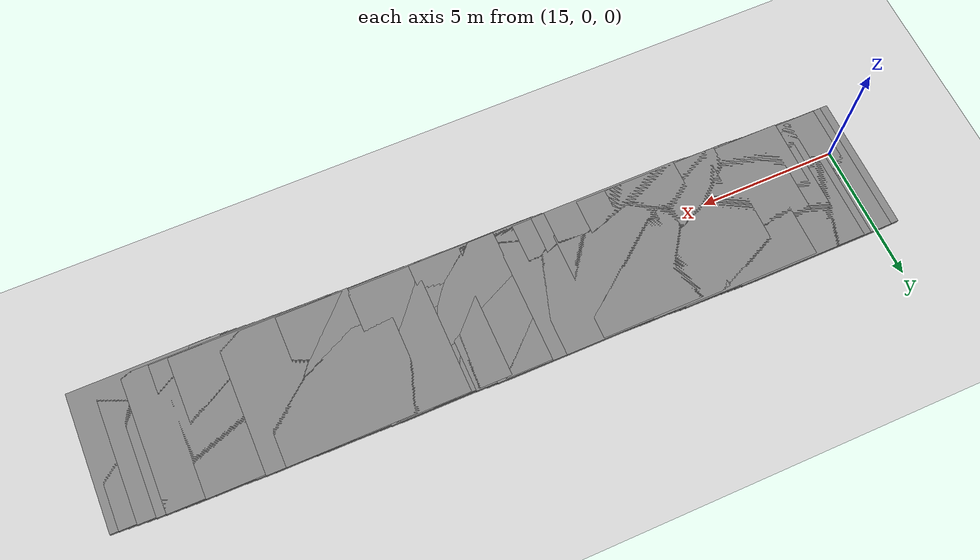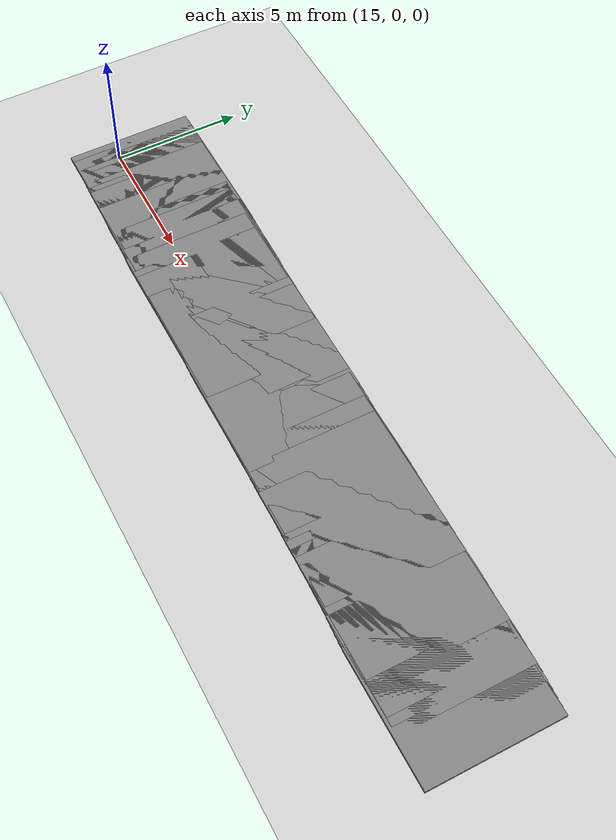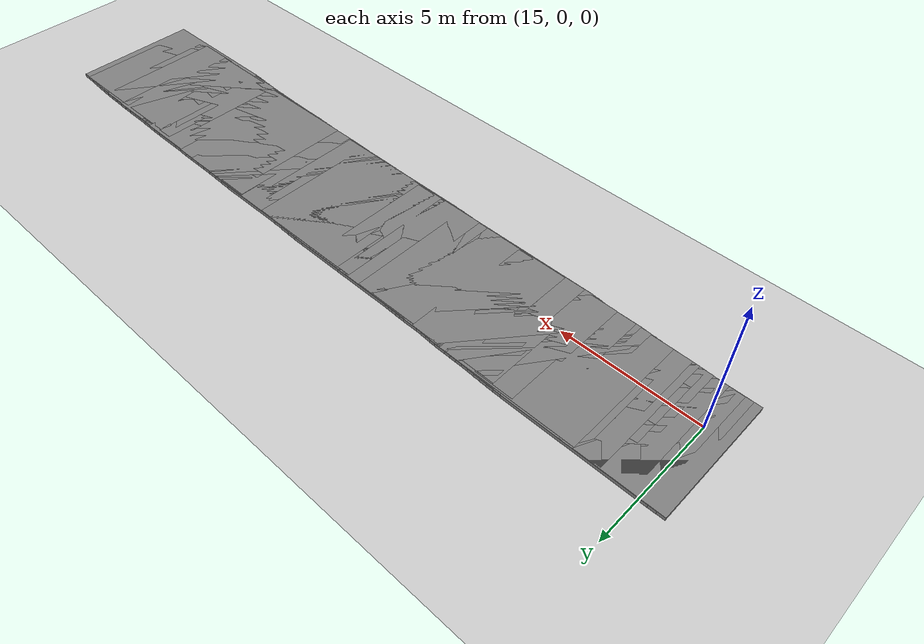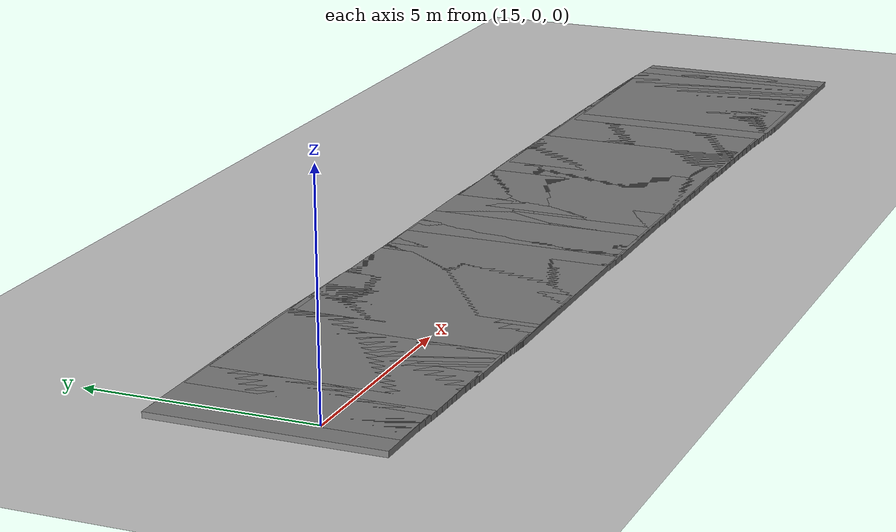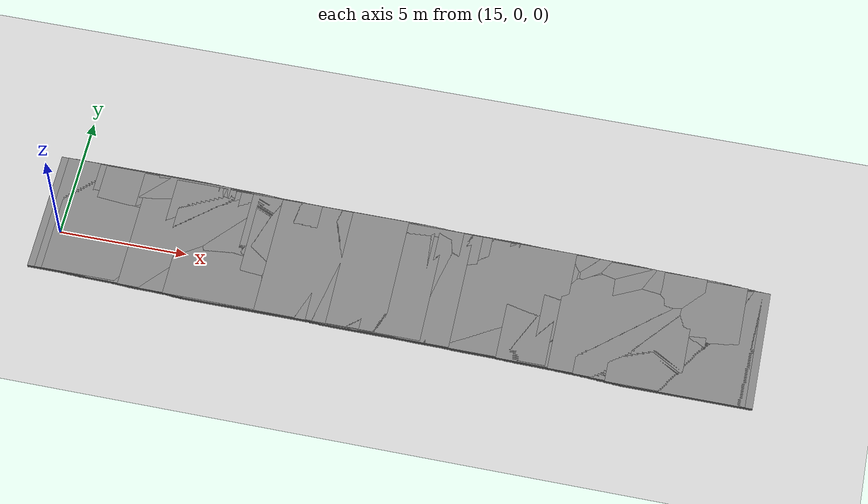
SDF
<sdf version="1.6">
 <world name="default">
  <include><uri>model://sun</uri></include>
  <include><uri>model://ground_plane</uri></include>
  <model name="road_segment_628">
   <static>true</static>
   <link name="link">
    <visual name="visual">
     <geometry><box><size>5.0 5.0 0.2</size></box></geometry>
     <material><ambient>0.5 0.5 0.5 1</ambient><diffuse>0.5 0.5 0.5 1</diffuse></material>
     <pose>39.71991176875603 0.3097164337712512 0.0 0 0 0</pose>
    </visual>
    <collision name="collision">
     <geometry><box><size>5.0 5.0 0.2</size></box></geometry>
     <pose>39.71991176875603 0.3097164337712512 0.0 0 0 0</pose>
    </collision>
   </link>
  </model>
  <model name="road_segment_629">
   <static>true</static>
   <link name="link">
    <visual name="visual">
     <geometry><box><size>5.0 5.0 0.2</size></box></geometry>
     <material><ambient>0.5 0.5 0.5 1</ambient><diffuse>0.5 0.5 0.5 1</diffuse></material>
     <pose>39.43407931622627 0.3215657432430937 0.0 0 0 0</pose>
    </visual>
    <collision name="collision">
     <geometry><box><size>5.0 5.0 0.2</size></box></geometry>
     <pose>39.43407931622627 0.3215657432430937 0.0 0 0 0</pose>
    </collision>
   </link>
  </model>
  <model name="road_segment_630">
   <static>true</static>
   <link name="link">
    <visual name="visual">
     <geometry><box><size>5.0 5.0 0.2</size></box></geometry>
     <material><ambient>0.5 0.5 0.5 1</ambient><diffuse>0.5 0.5 0.5 1</diffuse></material>
     <pose>39.14135379807257 0.34158699027521683 0.0 0 0 0</pose>
    </visual>
    <collision name="collision">
     <geometry><box><size>5.0 5.0 0.2</size></box></geometry>
     <pose>39.14135379807257 0.34158699027521683 0.0 0 0 0</pose>
    </collision>
   </link>
  </model>
  <model name="road_segment_631">
   <static>true</static>
   <link name="link">
    <visual name="visual">
     <geometry><box><size>5.0 5.0 0.2</size></box></geometry>
     <material><ambient>0.5 0.5 0.5 1</ambient><diffuse>0.5 0.5 0.5 1</diffuse></material>
     <pose>38.84150544552136 0.36160823731459807 0.0 0 0 0</pose>
    </visual>
    <collision name="collision">
     <geometry><box><size>5.0 5.0 0.2</size></box></geometry>
     <pose>38.84150544552136 0.36160823731459807 0.0 0 0 0</pose>
    </collision>
   </link>
  </model>
  <model name="road_segment_632">
   <static>true</static>
   <link name="link">
    <visual name="visual">
     <geometry><box><size>5.0 5.0 0.2</size></box></geometry>
     <material><ambient>0.5 0.5 0.5 1</ambient><diffuse>0.5 0.5 0.5 1</diffuse></material>
     <pose>38.5377510224804 0.382038081229816 0.0 0 0 0</pose>
    </visual>
    <collision name="collision">
     <geometry><box><size>5.0 5.0 0.2</size></box></geometry>
     <pose>38.5377510224804 0.382038081229816 0.0 0 0 0</pose>
    </collision>
   </link>
  </model>
  <model name="road_segment_633">
   <static>true</static>
   <link name="link">
    <visual name="visual">
     <geometry><box><size>5.0 5.0 0.2</size></box></geometry>
     <material><ambient>0.5 0.5 0.5 1</ambient><diffuse>0.5 0.5 0.5 1</diffuse></material>
     <pose>38.22641422729882 0.40124213451026586 0.0 0 0 0</pose>
    </visual>
    <collision name="collision">
     <geometry><box><size>5.0 5.0 0.2</size></box></geometry>
     <pose>38.22641422729882 0.40124213451026586 0.0 0 0 0</pose>
    </collision>
   </link>
  </model>
  <model name="road_segment_634">
   <static>true</static>
   <link name="link">
    <visual name="visual">
     <geometry><box><size>5.0 5.0 0.2</size></box></geometry>
     <material><ambient>0.5 0.5 0.5 1</ambient><diffuse>0.5 0.5 0.5 1</diffuse></material>
     <pose>37.91186066817683 0.41390863774103975 0.0 0 0 0</pose>
    </visual>
    <collision name="collision">
     <geometry><box><size>5.0 5.0 0.2</size></box></geometry>
     <pose>37.91186066817683 0.41390863774103975 0.0 0 0 0</pose>
    </collision>
   </link>
  </model>
  <model name="road_segment_635">
   <static>true</static>
   <link name="link">
    <visual name="visual">
     <geometry><box><size>5.0 5.0 0.2</size></box></geometry>
     <material><ambient>0.5 0.5 0.5 1</ambient><diffuse>0.5 0.5 0.5 1</diffuse></material>
     <pose>37.595698727084624 0.4228977690675098 0.0 0 0 0</pose>
    </visual>
    <collision name="collision">
     <geometry><box><size>5.0 5.0 0.2</size></box></geometry>
     <pose>37.595698727084624 0.4228977690675098 0.0 0 0 0</pose>
    </collision>
   </link>
  </model>
  <model name="road_segment_636">
   <static>true</static>
   <link name="link">
    <visual name="visual">
     <geometry><box><size>5.0 5.0 0.2</size></box></geometry>
     <material><ambient>0.5 0.5 0.5 1</ambient><diffuse>0.5 0.5 0.5 1</diffuse></material>
     <pose>37.2744818712429 0.4335212878973262 0.0 0 0 0</pose>
    </visual>
    <collision name="collision">
     <geometry><box><size>5.0 5.0 0.2</size></box></geometry>
     <pose>37.2744818712429 0.4335212878973262 0.0 0 0 0</pose>
    </collision>
   </link>
  </model>
  <model name="road_segment_637">
   <static>true</static>
   <link name="link">
    <visual name="visual">
     <geometry><box><size>5.0 5.0 0.2</size></box></geometry>
     <material><ambient>0.5 0.5 0.5 1</ambient><diffuse>0.5 0.5 0.5 1</diffuse></material>
     <pose>36.94752079406967 0.4449620004933322 0.0 0 0 0</pose>
    </visual>
    <collision name="collision">
     <geometry><box><size>5.0 5.0 0.2</size></box></geometry>
     <pose>36.94752079406967 0.4449620004933322 0.0 0 0 0</pose>
    </collision>
   </link>
  </model>
  <model name="road_segment_638">
   <static>true</static>
   <link name="link">
    <visual name="visual">
     <geometry><box><size>5.0 5.0 0.2</size></box></geometry>
     <material><ambient>0.5 0.5 0.5 1</ambient><diffuse>0.5 0.5 0.5 1</diffuse></material>
     <pose>36.62055971692909 0.4494565661565672 0.0 0 0 0</pose>
    </visual>
    <collision name="collision">
     <geometry><box><size>5.0 5.0 0.2</size></box></geometry>
     <pose>36.62055971692909 0.4494565661565672 0.0 0 0 0</pose>
    </collision>
   </link>
  </model>
  <model name="road_segment_639">
   <static>true</static>
   <link name="link">
    <visual name="visual">
     <geometry><box><size>5.0 5.0 0.2</size></box></geometry>
     <material><ambient>0.5 0.5 0.5 1</ambient><diffuse>0.5 0.5 0.5 1</diffuse></material>
     <pose>36.29405817746629 0.45721990684101127 0.0 0 0 0</pose>
    </visual>
    <collision name="collision">
     <geometry><box><size>5.0 5.0 0.2</size></box></geometry>
     <pose>36.29405817746629 0.45721990684101127 0.0 0 0 0</pose>
    </collision>
   </link>
  </model>
  <model name="road_segment_640">
   <static>true</static>
   <link name="link">
    <visual name="visual">
     <geometry><box><size>5.0 5.0 0.2</size></box></geometry>
     <material><ambient>0.5 0.5 0.5 1</ambient><diffuse>0.5 0.5 0.5 1</diffuse></material>
     <pose>35.9657184871944 0.4604886818694784 0.0 0 0 0</pose>
    </visual>
    <collision name="collision">
     <geometry><box><size>5.0 5.0 0.2</size></box></geometry>
     <pose>35.9657184871944 0.4604886818694784 0.0 0 0 0</pose>
    </collision>
   </link>
  </model>
  <model name="road_segment_641">
   <static>true</static>
   <link name="link">
    <visual name="visual">
     <geometry><box><size>5.0 5.0 0.2</size></box></geometry>
     <material><ambient>0.5 0.5 0.5 1</ambient><diffuse>0.5 0.5 0.5 1</diffuse></material>
     <pose>35.63622995266273 0.4617144725042463 0.0 0 0 0</pose>
    </visual>
    <collision name="collision">
     <geometry><box><size>5.0 5.0 0.2</size></box></geometry>
     <pose>35.63622995266273 0.4617144725042463 0.0 0 0 0</pose>
    </collision>
   </link>
  </model>
  <model name="road_segment_642">
   <static>true</static>
   <link name="link">
    <visual name="visual">
     <geometry><box><size>5.0 5.0 0.2</size></box></geometry>
     <material><ambient>0.5 0.5 0.5 1</ambient><diffuse>0.5 0.5 0.5 1</diffuse></material>
     <pose>35.30329488535175 0.4735637819760888 0.0 0 0 0</pose>
    </visual>
    <collision name="collision">
     <geometry><box><size>5.0 5.0 0.2</size></box></geometry>
     <pose>35.30329488535175 0.4735637819760888 0.0 0 0 0</pose>
    </collision>
   </link>
  </model>
  <model name="road_segment_643">
   <static>true</static>
   <link name="link">
    <visual name="visual">
     <geometry><box><size>5.0 5.0 0.2</size></box></geometry>
     <material><ambient>0.5 0.5 0.5 1</ambient><diffuse>0.5 0.5 0.5 1</diffuse></material>
     <pose>34.96990028033033 0.4874560758416305 0.0 0 0 0</pose>
    </visual>
    <collision name="collision">
     <geometry><box><size>5.0 5.0 0.2</size></box></geometry>
     <pose>34.96990028033033 0.4874560758416305 0.0 0 0 0</pose>
    </collision>
   </link>
  </model>
  <model name="road_segment_644">
   <static>true</static>
   <link name="link">
    <visual name="visual">
     <geometry><box><size>5.0 5.0 0.2</size></box></geometry>
     <material><ambient>0.5 0.5 0.5 1</ambient><diffuse>0.5 0.5 0.5 1</diffuse></material>
     <pose>34.634207986756714 0.49807959467144697 0.0 0 0 0</pose>
    </visual>
    <collision name="collision">
     <geometry><box><size>5.0 5.0 0.2</size></box></geometry>
     <pose>34.634207986756714 0.49807959467144697 0.0 0 0 0</pose>
    </collision>
   </link>
  </model>
  <model name="road_segment_645">
   <static>true</static>
   <link name="link">
    <visual name="visual">
     <geometry><box><size>5.0 5.0 0.2</size></box></geometry>
     <material><ambient>0.5 0.5 0.5 1</ambient><diffuse>0.5 0.5 0.5 1</diffuse></material>
     <pose>34.29759661779488 0.5058429353631491 0.0 0 0 0</pose>
    </visual>
    <collision name="collision">
     <geometry><box><size>5.0 5.0 0.2</size></box></geometry>
     <pose>34.29759661779488 0.5058429353631491 0.0 0 0 0</pose>
    </collision>
   </link>
  </model>
  <model name="road_segment_646">
   <static>true</static>
   <link name="link">
    <visual name="visual">
     <geometry><box><size>5.0 5.0 0.2</size></box></geometry>
     <material><ambient>0.5 0.5 0.5 1</ambient><diffuse>0.5 0.5 0.5 1</diffuse></material>
     <pose>33.95684940950439 0.5021655634588453 0.0 0 0 0</pose>
    </visual>
    <collision name="collision">
     <geometry><box><size>5.0 5.0 0.2</size></box></geometry>
     <pose>33.95684940950439 0.5021655634588453 0.0 0 0 0</pose>
    </collision>
   </link>
  </model>
  <model name="road_segment_647">
   <static>true</static>
   <link name="link">
    <visual name="visual">
     <geometry><box><size>5.0 5.0 0.2</size></box></geometry>
     <material><ambient>0.5 0.5 0.5 1</ambient><diffuse>0.5 0.5 0.5 1</diffuse></material>
     <pose>33.61173659298107 0.5029827572177766 0.0 0 0 0</pose>
    </visual>
    <collision name="collision">
     <geometry><box><size>5.0 5.0 0.2</size></box></geometry>
     <pose>33.61173659298107 0.5029827572177766 0.0 0 0 0</pose>
    </collision>
   </link>
  </model>
  <model name="road_segment_648">
   <static>true</static>
   <link name="link">
    <visual name="visual">
     <geometry><box><size>5.0 5.0 0.2</size></box></geometry>
     <material><ambient>0.5 0.5 0.5 1</ambient><diffuse>0.5 0.5 0.5 1</diffuse></material>
     <pose>33.26754285191127 0.5087031135085215 0.0 0 0 0</pose>
    </visual>
    <collision name="collision">
     <geometry><box><size>5.0 5.0 0.2</size></box></geometry>
     <pose>33.26754285191127 0.5087031135085215 0.0 0 0 0</pose>
    </collision>
   </link>
  </model>
  <model name="road_segment_649">
   <static>true</static>
   <link name="link">
    <visual name="visual">
     <geometry><box><size>5.0 5.0 0.2</size></box></geometry>
     <material><ambient>0.5 0.5 0.5 1</ambient><diffuse>0.5 0.5 0.5 1</diffuse></material>
     <pose>32.916915582927984 0.520552422980364 0.0 0 0 0</pose>
    </visual>
    <collision name="collision">
     <geometry><box><size>5.0 5.0 0.2</size></box></geometry>
     <pose>32.916915582927984 0.520552422980364 0.0 0 0 0</pose>
    </collision>
   </link>
  </model>
  <model name="road_segment_650">
   <static>true</static>
   <link name="link">
    <visual name="visual">
     <geometry><box><size>5.0 5.0 0.2</size></box></geometry>
     <material><ambient>0.5 0.5 0.5 1</ambient><diffuse>0.5 0.5 0.5 1</diffuse></material>
     <pose>32.56238224345495 0.529541554306834 0.0 0 0 0</pose>
    </visual>
    <collision name="collision">
     <geometry><box><size>5.0 5.0 0.2</size></box></geometry>
     <pose>32.56238224345495 0.529541554306834 0.0 0 0 0</pose>
    </collision>
   </link>
  </model>
  <model name="road_segment_651">
   <static>true</static>
   <link name="link">
    <visual name="visual">
     <geometry><box><size>5.0 5.0 0.2</size></box></geometry>
     <material><ambient>0.5 0.5 0.5 1</ambient><diffuse>0.5 0.5 0.5 1</diffuse></material>
     <pose>32.206010753172805 0.5303587480585072 0.0 0 0 0</pose>
    </visual>
    <collision name="collision">
     <geometry><box><size>5.0 5.0 0.2</size></box></geometry>
     <pose>32.206010753172805 0.5303587480585072 0.0 0 0 0</pose>
    </collision>
   </link>
  </model>
  <model name="road_segment_652">
   <static>true</static>
   <link name="link">
    <visual name="visual">
     <geometry><box><size>5.0 5.0 0.2</size></box></geometry>
     <material><ambient>0.5 0.5 0.5 1</ambient><diffuse>0.5 0.5 0.5 1</diffuse></material>
     <pose>31.84619273011135 0.5311759418174385 0.0 0 0 0</pose>
    </visual>
    <collision name="collision">
     <geometry><box><size>5.0 5.0 0.2</size></box></geometry>
     <pose>31.84619273011135 0.5311759418174385 0.0 0 0 0</pose>
    </collision>
   </link>
  </model>
  <model name="road_segment_653">
   <static>true</static>
   <link name="link">
    <visual name="visual">
     <geometry><box><size>5.0 5.0 0.2</size></box></geometry>
     <material><ambient>0.5 0.5 0.5 1</ambient><diffuse>0.5 0.5 0.5 1</diffuse></material>
     <pose>31.487064013599227 0.5360791043565102 0.0 0 0 0</pose>
    </visual>
    <collision name="collision">
     <geometry><box><size>5.0 5.0 0.2</size></box></geometry>
     <pose>31.487064013599227 0.5360791043565102 0.0 0 0 0</pose>
    </collision>
   </link>
  </model>
  <model name="road_segment_654">
   <static>true</static>
   <link name="link">
    <visual name="visual">
     <geometry><box><size>5.0 5.0 0.2</size></box></geometry>
     <material><ambient>0.5 0.5 0.5 1</ambient><diffuse>0.5 0.5 0.5 1</diffuse></material>
     <pose>31.12288038233758 0.5434338481651176 0.0 0 0 0</pose>
    </visual>
    <collision name="collision">
     <geometry><box><size>5.0 5.0 0.2</size></box></geometry>
     <pose>31.12288038233758 0.5434338481651176 0.0 0 0 0</pose>
    </collision>
   </link>
  </model>
  <model name="road_segment_655">
   <static>true</static>
   <link name="link">
    <visual name="visual">
     <geometry><box><size>5.0 5.0 0.2</size></box></geometry>
     <material><ambient>0.5 0.5 0.5 1</ambient><diffuse>0.5 0.5 0.5 1</diffuse></material>
     <pose>30.75616929368485 0.5524229794915877 0.0 0 0 0</pose>
    </visual>
    <collision name="collision">
     <geometry><box><size>5.0 5.0 0.2</size></box></geometry>
     <pose>30.75616929368485 0.5524229794915877 0.0 0 0 0</pose>
    </collision>
   </link>
  </model>
  <model name="road_segment_656">
   <static>true</static>
   <link name="link">
    <visual name="visual">
     <geometry><box><size>5.0 5.0 0.2</size></box></geometry>
     <material><ambient>0.5 0.5 0.5 1</ambient><diffuse>0.5 0.5 0.5 1</diffuse></material>
     <pose>30.389687973903662 0.5671324671088026 0.0 0 0 0</pose>
    </visual>
    <collision name="collision">
     <geometry><box><size>5.0 5.0 0.2</size></box></geometry>
     <pose>30.389687973903662 0.5671324671088026 0.0 0 0 0</pose>
    </collision>
   </link>
  </model>
  <model name="road_segment_657">
   <static>true</static>
   <link name="link">
    <visual name="visual">
     <geometry><box><size>5.0 5.0 0.2</size></box></geometry>
     <material><ambient>0.5 0.5 0.5 1</ambient><diffuse>0.5 0.5 0.5 1</diffuse></material>
     <pose>30.020908965570282 0.5785731797048086 0.0 0 0 0</pose>
    </visual>
    <collision name="collision">
     <geometry><box><size>5.0 5.0 0.2</size></box></geometry>
     <pose>30.020908965570282 0.5785731797048086 0.0 0 0 0</pose>
    </collision>
   </link>
  </model>
  <model name="road_segment_658">
   <static>true</static>
   <link name="link">
    <visual name="visual">
     <geometry><box><size>5.0 5.0 0.2</size></box></geometry>
     <material><ambient>0.5 0.5 0.5 1</ambient><diffuse>0.5 0.5 0.5 1</diffuse></material>
     <pose>29.64937273103957 0.5769387921869459 0.0 0 0 0</pose>
    </visual>
    <collision name="collision">
     <geometry><box><size>5.0 5.0 0.2</size></box></geometry>
     <pose>29.64937273103957 0.5769387921869459 0.0 0 0 0</pose>
    </collision>
   </link>
  </model>
  <model name="road_segment_659">
   <static>true</static>
   <link name="link">
    <visual name="visual">
     <geometry><box><size>5.0 5.0 0.2</size></box></geometry>
     <material><ambient>0.5 0.5 0.5 1</ambient><diffuse>0.5 0.5 0.5 1</diffuse></material>
     <pose>29.27622811453865 0.5675410639918974 0.0 0 0 0</pose>
    </visual>
    <collision name="collision">
     <geometry><box><size>5.0 5.0 0.2</size></box></geometry>
     <pose>29.27622811453865 0.5675410639918974 0.0 0 0 0</pose>
    </collision>
   </link>
  </model>
  <model name="road_segment_660">
   <static>true</static>
   <link name="link">
    <visual name="visual">
     <geometry><box><size>5.0 5.0 0.2</size></box></geometry>
     <material><ambient>0.5 0.5 0.5 1</ambient><diffuse>0.5 0.5 0.5 1</diffuse></material>
     <pose>28.9021644225842 0.5503799950978885 0.0 0 0 0</pose>
    </visual>
    <collision name="collision">
     <geometry><box><size>5.0 5.0 0.2</size></box></geometry>
     <pose>28.9021644225842 0.5503799950978885 0.0 0 0 0</pose>
    </collision>
   </link>
  </model>
  <model name="road_segment_661">
   <static>true</static>
   <link name="link">
    <visual name="visual">
     <geometry><box><size>5.0 5.0 0.2</size></box></geometry>
     <material><ambient>0.5 0.5 0.5 1</ambient><diffuse>0.5 0.5 0.5 1</diffuse></material>
     <pose>28.527641192951965 0.5475198169525161 0.0 0 0 0</pose>
    </visual>
    <collision name="collision">
     <geometry><box><size>5.0 5.0 0.2</size></box></geometry>
     <pose>28.527641192951965 0.5475198169525161 0.0 0 0 0</pose>
    </collision>
   </link>
  </model>
  <model name="road_segment_662">
   <static>true</static>
   <link name="link">
    <visual name="visual">
     <geometry><box><size>5.0 5.0 0.2</size></box></geometry>
     <material><ambient>0.5 0.5 0.5 1</ambient><diffuse>0.5 0.5 0.5 1</diffuse></material>
     <pose>28.156104958421253 0.5556917545200549 0.0 0 0 0</pose>
    </visual>
    <collision name="collision">
     <geometry><box><size>5.0 5.0 0.2</size></box></geometry>
     <pose>28.156104958421253 0.5556917545200549 0.0 0 0 0</pose>
    </collision>
   </link>
  </model>
  <model name="road_segment_663">
   <static>true</static>
   <link name="link">
    <visual name="visual">
     <geometry><box><size>5.0 5.0 0.2</size></box></geometry>
     <material><ambient>0.5 0.5 0.5 1</ambient><diffuse>0.5 0.5 0.5 1</diffuse></material>
     <pose>27.784109186180107 0.5704012421372698 0.0 0 0 0</pose>
    </visual>
    <collision name="collision">
     <geometry><box><size>5.0 5.0 0.2</size></box></geometry>
     <pose>27.784109186180107 0.5704012421372698 0.0 0 0 0</pose>
    </collision>
   </link>
  </model>
  <model name="road_segment_664">
   <static>true</static>
   <link name="link">
    <visual name="visual">
     <geometry><box><size>5.0 5.0 0.2</size></box></geometry>
     <material><ambient>0.5 0.5 0.5 1</ambient><diffuse>0.5 0.5 0.5 1</diffuse></material>
     <pose>27.413032489327183 0.5883795047829519 0.0 0 0 0</pose>
    </visual>
    <collision name="collision">
     <geometry><box><size>5.0 5.0 0.2</size></box></geometry>
     <pose>27.413032489327183 0.5883795047829519 0.0 0 0 0</pose>
    </collision>
   </link>
  </model>
  <model name="road_segment_665">
   <static>true</static>
   <link name="link">
    <visual name="visual">
     <geometry><box><size>5.0 5.0 0.2</size></box></geometry>
     <material><ambient>0.5 0.5 0.5 1</ambient><diffuse>0.5 0.5 0.5 1</diffuse></material>
     <pose>27.04287486789514 0.6075835580634018 0.0 0 0 0</pose>
    </visual>
    <collision name="collision">
     <geometry><box><size>5.0 5.0 0.2</size></box></geometry>
     <pose>27.04287486789514 0.6075835580634018 0.0 0 0 0</pose>
    </collision>
   </link>
  </model>
  <model name="road_segment_666">
   <static>true</static>
   <link name="link">
    <visual name="visual">
     <geometry><box><size>5.0 5.0 0.2</size></box></geometry>
     <material><ambient>0.5 0.5 0.5 1</ambient><diffuse>0.5 0.5 0.5 1</diffuse></material>
     <pose>26.676853085791734 0.6210672550458488 0.0 0 0 0</pose>
    </visual>
    <collision name="collision">
     <geometry><box><size>5.0 5.0 0.2</size></box></geometry>
     <pose>26.676853085791734 0.6210672550458488 0.0 0 0 0</pose>
    </collision>
   </link>
  </model>
  <model name="road_segment_667">
   <static>true</static>
   <link name="link">
    <visual name="visual">
     <geometry><box><size>5.0 5.0 0.2</size></box></geometry>
     <material><ambient>0.5 0.5 0.5 1</ambient><diffuse>0.5 0.5 0.5 1</diffuse></material>
     <pose>26.312899223401637 0.6296477894964823 0.0 0 0 0</pose>
    </visual>
    <collision name="collision">
     <geometry><box><size>5.0 5.0 0.2</size></box></geometry>
     <pose>26.312899223401637 0.6296477894964823 0.0 0 0 0</pose>
    </collision>
   </link>
  </model>
  <model name="road_segment_668">
   <static>true</static>
   <link name="link">
    <visual name="visual">
     <geometry><box><size>5.0 5.0 0.2</size></box></geometry>
     <material><ambient>0.5 0.5 0.5 1</ambient><diffuse>0.5 0.5 0.5 1</diffuse></material>
     <pose>25.953081200307533 0.6308735801312502 0.0 0 0 0</pose>
    </visual>
    <collision name="collision">
     <geometry><box><size>5.0 5.0 0.2</size></box></geometry>
     <pose>25.953081200307533 0.6308735801312502 0.0 0 0 0</pose>
    </collision>
   </link>
  </model>
  <model name="road_segment_669">
   <static>true</static>
   <link name="link">
    <visual name="visual">
     <geometry><box><size>5.0 5.0 0.2</size></box></geometry>
     <material><ambient>0.5 0.5 0.5 1</ambient><diffuse>0.5 0.5 0.5 1</diffuse></material>
     <pose>25.598547860867143 0.623110239439548 0.0 0 0 0</pose>
    </visual>
    <collision name="collision">
     <geometry><box><size>5.0 5.0 0.2</size></box></geometry>
     <pose>25.598547860867143 0.623110239439548 0.0 0 0 0</pose>
    </collision>
   </link>
  </model>
  <model name="road_segment_670">
   <static>true</static>
   <link name="link">
    <visual name="visual">
     <geometry><box><size>5.0 5.0 0.2</size></box></geometry>
     <material><ambient>0.5 0.5 0.5 1</ambient><diffuse>0.5 0.5 0.5 1</diffuse></material>
     <pose>25.265842562395058 0.6235188363153846 0.0 0 0 0</pose>
    </visual>
    <collision name="collision">
     <geometry><box><size>5.0 5.0 0.2</size></box></geometry>
     <pose>25.265842562395058 0.6235188363153846 0.0 0 0 0</pose>
    </collision>
   </link>
  </model>
  <model name="road_segment_671">
   <static>true</static>
   <link name="link">
    <visual name="visual">
     <geometry><box><size>5.0 5.0 0.2</size></box></geometry>
     <material><ambient>0.5 0.5 0.5 1</ambient><diffuse>0.5 0.5 0.5 1</diffuse></material>
     <pose>24.96254767703188 0.6284219988617143 0.0 0 0 0</pose>
    </visual>
    <collision name="collision">
     <geometry><box><size>5.0 5.0 0.2</size></box></geometry>
     <pose>24.96254767703188 0.6284219988617143 0.0 0 0 0</pose>
    </collision>
   </link>
  </model>
  <model name="road_segment_672">
   <static>true</static>
   <link name="link">
    <visual name="visual">
     <geometry><box><size>5.0 5.0 0.2</size></box></geometry>
     <material><ambient>0.5 0.5 0.5 1</ambient><diffuse>0.5 0.5 0.5 1</diffuse></material>
     <pose>24.68154037038009 0.6304649832481555 0.0 0 0 0</pose>
    </visual>
    <collision name="collision">
     <geometry><box><size>5.0 5.0 0.2</size></box></geometry>
     <pose>24.68154037038009 0.6304649832481555 0.0 0 0 0</pose>
    </collision>
   </link>
  </model>
  <model name="road_segment_673">
   <static>true</static>
   <link name="link">
    <visual name="visual">
     <geometry><box><size>5.0 5.0 0.2</size></box></geometry>
     <material><ambient>0.5 0.5 0.5 1</ambient><diffuse>0.5 0.5 0.5 1</diffuse></material>
     <pose>24.420982491630593 0.6300563863723189 0.0 0 0 0</pose>
    </visual>
    <collision name="collision">
     <geometry><box><size>5.0 5.0 0.2</size></box></geometry>
     <pose>24.420982491630593 0.6300563863723189 0.0 0 0 0</pose>
    </collision>
   </link>
  </model>
  <model name="road_segment_674">
   <static>true</static>
   <link name="link">
    <visual name="visual">
     <geometry><box><size>5.0 5.0 0.2</size></box></geometry>
     <material><ambient>0.5 0.5 0.5 1</ambient><diffuse>0.5 0.5 0.5 1</diffuse></material>
     <pose>24.180184734168744 0.6329165645176913 0.0 0 0 0</pose>
    </visual>
    <collision name="collision">
     <geometry><box><size>5.0 5.0 0.2</size></box></geometry>
     <pose>24.180184734168744 0.6329165645176913 0.0 0 0 0</pose>
    </collision>
   </link>
  </model>
  <model name="road_segment_675">
   <static>true</static>
   <link name="link">
    <visual name="visual">
     <geometry><box><size>5.0 5.0 0.2</size></box></geometry>
     <material><ambient>0.5 0.5 0.5 1</ambient><diffuse>0.5 0.5 0.5 1</diffuse></material>
     <pose>23.95524102753745 0.6247446269574106 0.0 0 0 0</pose>
    </visual>
    <collision name="collision">
     <geometry><box><size>5.0 5.0 0.2</size></box></geometry>
     <pose>23.95524102753745 0.6247446269574106 0.0 0 0 0</pose>
    </collision>
   </link>
  </model>
  <model name="road_segment_676">
   <static>true</static>
   <link name="link">
    <visual name="visual">
     <geometry><box><size>5.0 5.0 0.2</size></box></geometry>
     <material><ambient>0.5 0.5 0.5 1</ambient><diffuse>0.5 0.5 0.5 1</diffuse></material>
     <pose>23.749368135677127 0.6206586581700122 0.0 0 0 0</pose>
    </visual>
    <collision name="collision">
     <geometry><box><size>5.0 5.0 0.2</size></box></geometry>
     <pose>23.749368135677127 0.6206586581700122 0.0 0 0 0</pose>
    </collision>
   </link>
  </model>
  <model name="road_segment_677">
   <static>true</static>
   <link name="link">
    <visual name="visual">
     <geometry><box><size>5.0 5.0 0.2</size></box></geometry>
     <material><ambient>0.5 0.5 0.5 1</ambient><diffuse>0.5 0.5 0.5 1</diffuse></material>
     <pose>23.560727907746017 0.6177984800246398 0.0 0 0 0</pose>
    </visual>
    <collision name="collision">
     <geometry><box><size>5.0 5.0 0.2</size></box></geometry>
     <pose>23.560727907746017 0.6177984800246398 0.0 0 0 0</pose>
    </collision>
   </link>
  </model>
  <model name="road_segment_678">
   <static>true</static>
   <link name="link">
    <visual name="visual">
     <geometry><box><size>5.0 5.0 0.2</size></box></geometry>
     <material><ambient>0.5 0.5 0.5 1</ambient><diffuse>0.5 0.5 0.5 1</diffuse></material>
     <pose>23.390469188003895 0.6104437362160323 0.0 0 0 0</pose>
    </visual>
    <collision name="collision">
     <geometry><box><size>5.0 5.0 0.2</size></box></geometry>
     <pose>23.390469188003895 0.6104437362160323 0.0 0 0 0</pose>
    </collision>
   </link>
  </model>
  <model name="road_segment_679">
   <static>true</static>
   <link name="link">
    <visual name="visual">
     <geometry><box><size>5.0 5.0 0.2</size></box></geometry>
     <material><ambient>0.5 0.5 0.5 1</ambient><diffuse>0.5 0.5 0.5 1</diffuse></material>
     <pose>23.238362207611868 0.605131976793866 0.0 0 0 0</pose>
    </visual>
    <collision name="collision">
     <geometry><box><size>5.0 5.0 0.2</size></box></geometry>
     <pose>23.238362207611868 0.605131976793866 0.0 0 0 0</pose>
    </collision>
   </link>
  </model>
  <model name="road_segment_680">
   <static>true</static>
   <link name="link">
    <visual name="visual">
     <geometry><box><size>5.0 5.0 0.2</size></box></geometry>
     <material><ambient>0.5 0.5 0.5 1</ambient><diffuse>0.5 0.5 0.5 1</diffuse></material>
     <pose>23.10509627315192 0.6006374111306308 0.0 0 0 0</pose>
    </visual>
    <collision name="collision">
     <geometry><box><size>5.0 5.0 0.2</size></box></geometry>
     <pose>23.10509627315192 0.6006374111306308 0.0 0 0 0</pose>
    </collision>
   </link>
  </model>
  <model name="road_segment_681">
   <static>true</static>
   <link name="link">
    <visual name="visual">
     <geometry><box><size>5.0 5.0 0.2</size></box></geometry>
     <material><ambient>0.5 0.5 0.5 1</ambient><diffuse>0.5 0.5 0.5 1</diffuse></material>
     <pose>22.987454620650976 0.5973686361094219 0.0 0 0 0</pose>
    </visual>
    <collision name="collision">
     <geometry><box><size>5.0 5.0 0.2</size></box></geometry>
     <pose>22.987454620650976 0.5973686361094219 0.0 0 0 0</pose>
    </collision>
   </link>
  </model>
  <model name="road_segment_682">
   <static>true</static>
   <link name="link">
    <visual name="visual">
     <geometry><box><size>5.0 5.0 0.2</size></box></geometry>
     <material><ambient>0.5 0.5 0.5 1</ambient><diffuse>0.5 0.5 0.5 1</diffuse></material>
     <pose>22.889573089470336 0.5940998610809548 0.0 0 0 0</pose>
    </visual>
    <collision name="collision">
     <geometry><box><size>5.0 5.0 0.2</size></box></geometry>
     <pose>22.889573089470336 0.5940998610809548 0.0 0 0 0</pose>
    </collision>
   </link>
  </model>
  <model name="road_segment_683">
   <static>true</static>
   <link name="link">
    <visual name="visual">
     <geometry><box><size>5.0 5.0 0.2</size></box></geometry>
     <material><ambient>0.5 0.5 0.5 1</ambient><diffuse>0.5 0.5 0.5 1</diffuse></material>
     <pose>22.80846468454113 0.5912396829283242 0.0 0 0 0</pose>
    </visual>
    <collision name="collision">
     <geometry><box><size>5.0 5.0 0.2</size></box></geometry>
     <pose>22.80846468454113 0.5912396829283242 0.0 0 0 0</pose>
    </collision>
   </link>
  </model>
  <model name="road_segment_684">
   <static>true</static>
   <link name="link">
    <visual name="visual">
     <geometry><box><size>5.0 5.0 0.2</size></box></geometry>
     <material><ambient>0.5 0.5 0.5 1</ambient><diffuse>0.5 0.5 0.5 1</diffuse></material>
     <pose>22.745737787800902 0.5855193266375794 0.0 0 0 0</pose>
    </visual>
    <collision name="collision">
     <geometry><box><size>5.0 5.0 0.2</size></box></geometry>
     <pose>22.745737787800902 0.5855193266375794 0.0 0 0 0</pose>
    </collision>
   </link>
  </model>
  <model name="road_segment_685">
   <static>true</static>
   <link name="link">
    <visual name="visual">
     <geometry><box><size>5.0 5.0 0.2</size></box></geometry>
     <material><ambient>0.5 0.5 0.5 1</ambient><diffuse>0.5 0.5 0.5 1</diffuse></material>
     <pose>22.703690087769207 0.5875623110240205 0.0 0 0 0</pose>
    </visual>
    <collision name="collision">
     <geometry><box><size>5.0 5.0 0.2</size></box></geometry>
     <pose>22.703690087769207 0.5875623110240205 0.0 0 0 0</pose>
    </collision>
   </link>
  </model>
  <model name="road_segment_686">
   <static>true</static>
   <link name="link">
    <visual name="visual">
     <geometry><box><size>5.0 5.0 0.2</size></box></geometry>
     <material><ambient>0.5 0.5 0.5 1</ambient><diffuse>0.5 0.5 0.5 1</diffuse></material>
     <pose>22.66669730251969 0.5896052954177198 0.0 0 0 0</pose>
    </visual>
    <collision name="collision">
     <geometry><box><size>5.0 5.0 0.2</size></box></geometry>
     <pose>22.66669730251969 0.5896052954177198 0.0 0 0 0</pose>
    </collision>
   </link>
  </model>
  <model name="road_segment_687">
   <static>true</static>
   <link name="link">
    <visual name="visual">
     <geometry><box><size>5.0 5.0 0.2</size></box></geometry>
     <material><ambient>0.5 0.5 0.5 1</ambient><diffuse>0.5 0.5 0.5 1</diffuse></material>
     <pose>22.609255089400534 0.5985944267441898 0.0 0 0 0</pose>
    </visual>
    <collision name="collision">
     <geometry><box><size>5.0 5.0 0.2</size></box></geometry>
     <pose>22.609255089400534 0.5985944267441898 0.0 0 0 0</pose>
    </collision>
   </link>
  </model>
  <model name="road_segment_688">
   <static>true</static>
   <link name="link">
    <visual name="visual">
     <geometry><box><size>5.0 5.0 0.2</size></box></geometry>
     <material><ambient>0.5 0.5 0.5 1</ambient><diffuse>0.5 0.5 0.5 1</diffuse></material>
     <pose>22.52791691559978 0.6034975892832615 0.0 0 0 0</pose>
    </visual>
    <collision name="collision">
     <geometry><box><size>5.0 5.0 0.2</size></box></geometry>
     <pose>22.52791691559978 0.6034975892832615 0.0 0 0 0</pose>
    </collision>
   </link>
  </model>
  <model name="road_segment_689">
   <static>true</static>
   <link name="link">
    <visual name="visual">
     <geometry><box><size>5.0 5.0 0.2</size></box></geometry>
     <material><ambient>0.5 0.5 0.5 1</ambient><diffuse>0.5 0.5 0.5 1</diffuse></material>
     <pose>22.428197233577382 0.6043147830349346 0.0 0 0 0</pose>
    </visual>
    <collision name="collision">
     <geometry><box><size>5.0 5.0 0.2</size></box></geometry>
     <pose>22.428197233577382 0.6043147830349346 0.0 0 0 0</pose>
    </collision>
   </link>
  </model>
  <model name="road_segment_690">
   <static>true</static>
   <link name="link">
    <visual name="visual">
     <geometry><box><size>5.0 5.0 0.2</size></box></geometry>
     <material><ambient>0.5 0.5 0.5 1</ambient><diffuse>0.5 0.5 0.5 1</diffuse></material>
     <pose>22.306649510586688 0.614121108120336 0.0 0 0 0</pose>
    </visual>
    <collision name="collision">
     <geometry><box><size>5.0 5.0 0.2</size></box></geometry>
     <pose>22.306649510586688 0.614121108120336 0.0 0 0 0</pose>
    </collision>
   </link>
  </model>
  <model name="road_segment_691">
   <static>true</static>
   <link name="link">
    <visual name="visual">
     <geometry><box><size>5.0 5.0 0.2</size></box></geometry>
     <material><ambient>0.5 0.5 0.5 1</ambient><diffuse>0.5 0.5 0.5 1</diffuse></material>
     <pose>22.16970727447588 0.6300563863723189 0.0 0 0 0</pose>
    </visual>
    <collision name="collision">
     <geometry><box><size>5.0 5.0 0.2</size></box></geometry>
     <pose>22.16970727447588 0.6300563863723189 0.0 0 0 0</pose>
    </collision>
   </link>
  </model>
  <model name="road_segment_692">
   <static>true</static>
   <link name="link">
    <visual name="visual">
     <geometry><box><size>5.0 5.0 0.2</size></box></geometry>
     <material><ambient>0.5 0.5 0.5 1</ambient><diffuse>0.5 0.5 0.5 1</diffuse></material>
     <pose>22.023574284286905 0.6394541145746255 0.0 0 0 0</pose>
    </visual>
    <collision name="collision">
     <geometry><box><size>5.0 5.0 0.2</size></box></geometry>
     <pose>22.023574284286905 0.6394541145746255 0.0 0 0 0</pose>
    </collision>
   </link>
  </model>
  <model name="road_segment_693">
   <static>true</static>
   <link name="link">
    <visual name="visual">
     <geometry><box><size>5.0 5.0 0.2</size></box></geometry>
     <material><ambient>0.5 0.5 0.5 1</ambient><diffuse>0.5 0.5 0.5 1</diffuse></material>
     <pose>21.870318459635108 0.6419056958441614 0.0 0 0 0</pose>
    </visual>
    <collision name="collision">
     <geometry><box><size>5.0 5.0 0.2</size></box></geometry>
     <pose>21.870318459635108 0.6419056958441614 0.0 0 0 0</pose>
    </collision>
   </link>
  </model>
  <model name="road_segment_694">
   <static>true</static>
   <link name="link">
    <visual name="visual">
     <geometry><box><size>5.0 5.0 0.2</size></box></geometry>
     <material><ambient>0.5 0.5 0.5 1</ambient><diffuse>0.5 0.5 0.5 1</diffuse></material>
     <pose>21.705344423514052 0.6427228896030927 0.0 0 0 0</pose>
    </visual>
    <collision name="collision">
     <geometry><box><size>5.0 5.0 0.2</size></box></geometry>
     <pose>21.705344423514052 0.6427228896030927 0.0 0 0 0</pose>
    </collision>
   </link>
  </model>
  <model name="road_segment_695">
   <static>true</static>
   <link name="link">
    <visual name="visual">
     <geometry><box><size>5.0 5.0 0.2</size></box></geometry>
     <material><ambient>0.5 0.5 0.5 1</ambient><diffuse>0.5 0.5 0.5 1</diffuse></material>
     <pose>21.53600477919281 0.6525292146812359 0.0 0 0 0</pose>
    </visual>
    <collision name="collision">
     <geometry><box><size>5.0 5.0 0.2</size></box></geometry>
     <pose>21.53600477919281 0.6525292146812359 0.0 0 0 0</pose>
    </collision>
   </link>
  </model>
  <model name="road_segment_696">
   <static>true</static>
   <link name="link">
    <visual name="visual">
     <geometry><box><size>5.0 5.0 0.2</size></box></geometry>
     <material><ambient>0.5 0.5 0.5 1</ambient><diffuse>0.5 0.5 0.5 1</diffuse></material>
     <pose>21.360001838151835 0.6566151834613763 0.0 0 0 0</pose>
    </visual>
    <collision name="collision">
     <geometry><box><size>5.0 5.0 0.2</size></box></geometry>
     <pose>21.360001838151835 0.6566151834613763 0.0 0 0 0</pose>
    </collision>
   </link>
  </model>
  <model name="road_segment_697">
   <static>true</static>
   <link name="link">
    <visual name="visual">
     <geometry><box><size>5.0 5.0 0.2</size></box></geometry>
     <material><ambient>0.5 0.5 0.5 1</ambient><diffuse>0.5 0.5 0.5 1</diffuse></material>
     <pose>21.17963328891067 0.6578409740961442 0.0 0 0 0</pose>
    </visual>
    <collision name="collision">
     <geometry><box><size>5.0 5.0 0.2</size></box></geometry>
     <pose>21.17963328891067 0.6578409740961442 0.0 0 0 0</pose>
    </collision>
   </link>
  </model>
  <model name="road_segment_698">
   <static>true</static>
   <link name="link">
    <visual name="visual">
     <geometry><box><size>5.0 5.0 0.2</size></box></geometry>
     <material><ambient>0.5 0.5 0.5 1</ambient><diffuse>0.5 0.5 0.5 1</diffuse></material>
     <pose>21.00202196589948 0.6574323772203076 0.0 0 0 0</pose>
    </visual>
    <collision name="collision">
     <geometry><box><size>5.0 5.0 0.2</size></box></geometry>
     <pose>21.00202196589948 0.6574323772203076 0.0 0 0 0</pose>
    </collision>
   </link>
  </model>
  <model name="road_segment_699">
   <static>true</static>
   <link name="link">
    <visual name="visual">
     <geometry><box><size>5.0 5.0 0.2</size></box></geometry>
     <material><ambient>0.5 0.5 0.5 1</ambient><diffuse>0.5 0.5 0.5 1</diffuse></material>
     <pose>20.818896190428333 0.6521206177981412 0.0 0 0 0</pose>
    </visual>
    <collision name="collision">
     <geometry><box><size>5.0 5.0 0.2</size></box></geometry>
     <pose>20.818896190428333 0.6521206177981412 0.0 0 0 0</pose>
    </collision>
   </link>
  </model>
  <model name="road_segment_700">
   <static>true</static>
   <link name="link">
    <visual name="visual">
     <geometry><box><size>5.0 5.0 0.2</size></box></geometry>
     <material><ambient>0.5 0.5 0.5 1</ambient><diffuse>0.5 0.5 0.5 1</diffuse></material>
     <pose>20.630026193658335 0.6582495709792389 0.0 0 0 0</pose>
    </visual>
    <collision name="collision">
     <geometry><box><size>5.0 5.0 0.2</size></box></geometry>
     <pose>20.630026193658335 0.6582495709792389 0.0 0 0 0</pose>
    </collision>
   </link>
  </model>
  <model name="road_segment_701">
   <static>true</static>
   <link name="link">
    <visual name="visual">
     <geometry><box><size>5.0 5.0 0.2</size></box></geometry>
     <material><ambient>0.5 0.5 0.5 1</ambient><diffuse>0.5 0.5 0.5 1</diffuse></material>
     <pose>20.440237121467455 0.6717332679616859 0.0 0 0 0</pose>
    </visual>
    <collision name="collision">
     <geometry><box><size>5.0 5.0 0.2</size></box></geometry>
     <pose>20.440237121467455 0.6717332679616859 0.0 0 0 0</pose>
    </collision>
   </link>
  </model>
  <model name="road_segment_702">
   <static>true</static>
   <link name="link">
    <visual name="visual">
     <geometry><box><size>5.0 5.0 0.2</size></box></geometry>
     <material><ambient>0.5 0.5 0.5 1</ambient><diffuse>0.5 0.5 0.5 1</diffuse></material>
     <pose>20.24309544597486 0.6831739805504337 0.0 0 0 0</pose>
    </visual>
    <collision name="collision">
     <geometry><box><size>5.0 5.0 0.2</size></box></geometry>
     <pose>20.24309544597486 0.6831739805504337 0.0 0 0 0</pose>
    </collision>
   </link>
  </model>
  <model name="road_segment_703">
   <static>true</static>
   <link name="link">
    <visual name="visual">
     <geometry><box><size>5.0 5.0 0.2</size></box></geometry>
     <material><ambient>0.5 0.5 0.5 1</ambient><diffuse>0.5 0.5 0.5 1</diffuse></material>
     <pose>20.04503469509404 0.6954318869053708 0.0 0 0 0</pose>
    </visual>
    <collision name="collision">
     <geometry><box><size>5.0 5.0 0.2</size></box></geometry>
     <pose>20.04503469509404 0.6954318869053708 0.0 0 0 0</pose>
    </collision>
   </link>
  </model>
  <model name="road_segment_704">
   <static>true</static>
   <link name="link">
    <visual name="visual">
     <geometry><box><size>5.0 5.0 0.2</size></box></geometry>
     <material><ambient>0.5 0.5 0.5 1</ambient><diffuse>0.5 0.5 0.5 1</diffuse></material>
     <pose>19.839621340944152 0.706464002618282 0.0 0 0 0</pose>
    </visual>
    <collision name="collision">
     <geometry><box><size>5.0 5.0 0.2</size></box></geometry>
     <pose>19.839621340944152 0.706464002618282 0.0 0 0 0</pose>
    </collision>
   </link>
  </model>
  <model name="road_segment_705">
   <static>true</static>
   <link name="link">
    <visual name="visual">
     <geometry><box><size>5.0 5.0 0.2</size></box></geometry>
     <material><ambient>0.5 0.5 0.5 1</ambient><diffuse>0.5 0.5 0.5 1</diffuse></material>
     <pose>19.634207986761616 0.7060554057424455 0.0 0 0 0</pose>
    </visual>
    <collision name="collision">
     <geometry><box><size>5.0 5.0 0.2</size></box></geometry>
     <pose>19.634207986761616 0.7060554057424455 0.0 0 0 0</pose>
    </collision>
   </link>
  </model>
  <model name="road_segment_706">
   <static>true</static>
   <link name="link">
    <visual name="visual">
     <geometry><box><size>5.0 5.0 0.2</size></box></geometry>
     <material><ambient>0.5 0.5 0.5 1</ambient><diffuse>0.5 0.5 0.5 1</diffuse></material>
     <pose>19.417306189981367 0.7097327776467492 0.0 0 0 0</pose>
    </visual>
    <collision name="collision">
     <geometry><box><size>5.0 5.0 0.2</size></box></geometry>
     <pose>19.417306189981367 0.7097327776467492 0.0 0 0 0</pose>
    </collision>
   </link>
  </model>
  <model name="road_segment_707">
   <static>true</static>
   <link name="link">
    <visual name="visual">
     <geometry><box><size>5.0 5.0 0.2</size></box></geometry>
     <material><ambient>0.5 0.5 0.5 1</ambient><diffuse>0.5 0.5 0.5 1</diffuse></material>
     <pose>19.197876935810033 0.7150445370616574 0.0 0 0 0</pose>
    </visual>
    <collision name="collision">
     <geometry><box><size>5.0 5.0 0.2</size></box></geometry>
     <pose>19.197876935810033 0.7150445370616574 0.0 0 0 0</pose>
    </collision>
   </link>
  </model>
  <model name="road_segment_708">
   <static>true</static>
   <link name="link">
    <visual name="visual">
     <geometry><box><size>5.0 5.0 0.2</size></box></geometry>
     <material><ambient>0.5 0.5 0.5 1</ambient><diffuse>0.5 0.5 0.5 1</diffuse></material>
     <pose>18.97040577178765 0.715453133937494 0.0 0 0 0</pose>
    </visual>
    <collision name="collision">
     <geometry><box><size>5.0 5.0 0.2</size></box></geometry>
     <pose>18.97040577178765 0.715453133937494 0.0 0 0 0</pose>
    </collision>
   </link>
  </model>
  <model name="road_segment_709">
   <static>true</static>
   <link name="link">
    <visual name="visual">
     <geometry><box><size>5.0 5.0 0.2</size></box></geometry>
     <material><ambient>0.5 0.5 0.5 1</ambient><diffuse>0.5 0.5 0.5 1</diffuse></material>
     <pose>18.73650107991708 0.7203562964838238 0.0 0 0 0</pose>
    </visual>
    <collision name="collision">
     <geometry><box><size>5.0 5.0 0.2</size></box></geometry>
     <pose>18.73650107991708 0.7203562964838238 0.0 0 0 0</pose>
    </collision>
   </link>
  </model>
  <model name="road_segment_710">
   <static>true</static>
   <link name="link">
    <visual name="visual">
     <geometry><box><size>5.0 5.0 0.2</size></box></geometry>
     <material><ambient>0.5 0.5 0.5 1</ambient><diffuse>0.5 0.5 0.5 1</diffuse></material>
     <pose>18.496392629037217 0.7297540246788723 0.0 0 0 0</pose>
    </visual>
    <collision name="collision">
     <geometry><box><size>5.0 5.0 0.2</size></box></geometry>
     <pose>18.496392629037217 0.7297540246788723 0.0 0 0 0</pose>
    </collision>
   </link>
  </model>
  <model name="road_segment_711">
   <static>true</static>
   <link name="link">
    <visual name="visual">
     <geometry><box><size>5.0 5.0 0.2</size></box></geometry>
     <material><ambient>0.5 0.5 0.5 1</ambient><diffuse>0.5 0.5 0.5 1</diffuse></material>
     <pose>18.24916134369453 0.7403775435159469 0.0 0 0 0</pose>
    </visual>
    <collision name="collision">
     <geometry><box><size>5.0 5.0 0.2</size></box></geometry>
     <pose>18.24916134369453 0.7403775435159469 0.0 0 0 0</pose>
    </collision>
   </link>
  </model>
  <model name="road_segment_712">
   <static>true</static>
   <link name="link">
    <visual name="visual">
     <geometry><box><size>5.0 5.0 0.2</size></box></geometry>
     <material><ambient>0.5 0.5 0.5 1</ambient><diffuse>0.5 0.5 0.5 1</diffuse></material>
     <pose>17.997104912473866 0.7526354498708842 0.0 0 0 0</pose>
    </visual>
    <collision name="collision">
     <geometry><box><size>5.0 5.0 0.2</size></box></geometry>
     <pose>17.997104912473866 0.7526354498708842 0.0 0 0 0</pose>
    </collision>
   </link>
  </model>
  <model name="road_segment_713">
   <static>true</static>
   <link name="link">
    <visual name="visual">
     <geometry><box><size>5.0 5.0 0.2</size></box></geometry>
     <material><ambient>0.5 0.5 0.5 1</ambient><diffuse>0.5 0.5 0.5 1</diffuse></material>
     <pose>17.73953402876059 0.7632589687007005 0.0 0 0 0</pose>
    </visual>
    <collision name="collision">
     <geometry><box><size>5.0 5.0 0.2</size></box></geometry>
     <pose>17.73953402876059 0.7632589687007005 0.0 0 0 0</pose>
    </collision>
   </link>
  </model>
  <model name="road_segment_714">
   <static>true</static>
   <link name="link">
    <visual name="visual">
     <geometry><box><size>5.0 5.0 0.2</size></box></geometry>
     <material><ambient>0.5 0.5 0.5 1</ambient><diffuse>0.5 0.5 0.5 1</diffuse></material>
     <pose>17.478746381139544 0.7681621312470304 0.0 0 0 0</pose>
    </visual>
    <collision name="collision">
     <geometry><box><size>5.0 5.0 0.2</size></box></geometry>
     <pose>17.478746381139544 0.7681621312470304 0.0 0 0 0</pose>
    </collision>
   </link>
  </model>
  <model name="road_segment_715">
   <static>true</static>
   <link name="link">
    <visual name="visual">
     <geometry><box><size>5.0 5.0 0.2</size></box></geometry>
     <material><ambient>0.5 0.5 0.5 1</ambient><diffuse>0.5 0.5 0.5 1</diffuse></material>
     <pose>17.215201507288523 0.7726566969030072 0.0 0 0 0</pose>
    </visual>
    <collision name="collision">
     <geometry><box><size>5.0 5.0 0.2</size></box></geometry>
     <pose>17.215201507288523 0.7726566969030072 0.0 0 0 0</pose>
    </collision>
   </link>
  </model>
  <model name="road_segment_716">
   <static>true</static>
   <link name="link">
    <visual name="visual">
     <geometry><box><size>5.0 5.0 0.2</size></box></geometry>
     <material><ambient>0.5 0.5 0.5 1</ambient><diffuse>0.5 0.5 0.5 1</diffuse></material>
     <pose>16.943844492457995 0.7661191468533312 0.0 0 0 0</pose>
    </visual>
    <collision name="collision">
     <geometry><box><size>5.0 5.0 0.2</size></box></geometry>
     <pose>16.943844492457995 0.7661191468533312 0.0 0 0 0</pose>
    </collision>
   </link>
  </model>
  <model name="road_segment_717">
   <static>true</static>
   <link name="link">
    <visual name="visual">
     <geometry><box><size>5.0 5.0 0.2</size></box></geometry>
     <material><ambient>0.5 0.5 0.5 1</ambient><diffuse>0.5 0.5 0.5 1</diffuse></material>
     <pose>16.666283718585518 0.7608073874311647 0.0 0 0 0</pose>
    </visual>
    <collision name="collision">
     <geometry><box><size>5.0 5.0 0.2</size></box></geometry>
     <pose>16.666283718585518 0.7608073874311647 0.0 0 0 0</pose>
    </collision>
   </link>
  </model>
 </world>
</sdf>
